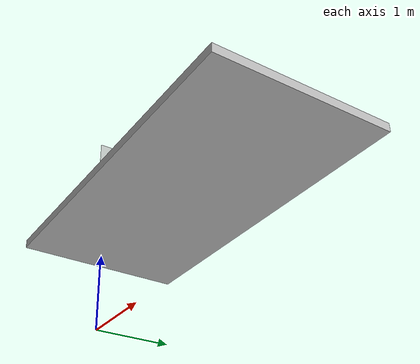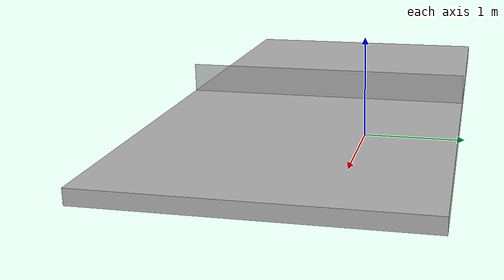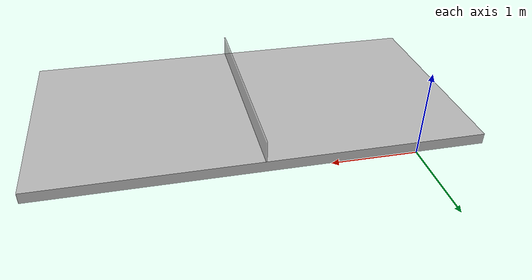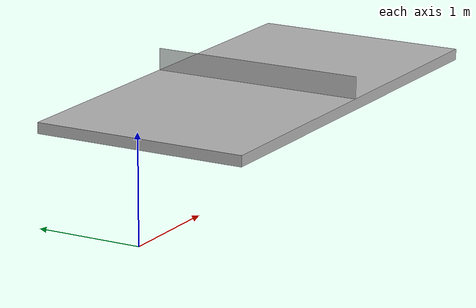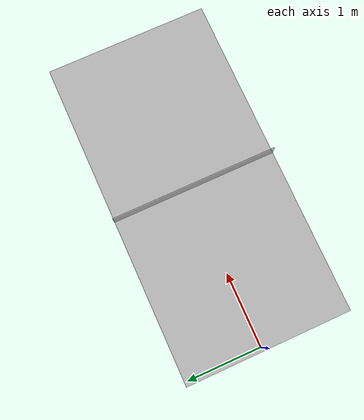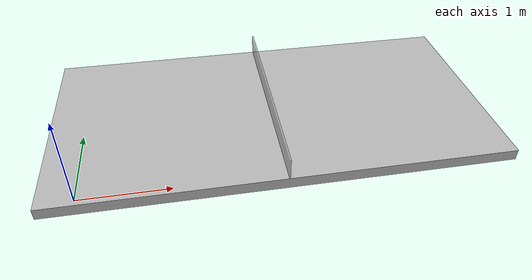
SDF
<?xml version="1.0"?>
<sdf version="1.7">
    <model name="table">
        <pose>0 0 0 0 0 0</pose>
        <link name="table">
            <pose>2 0 0.45 0 0 0</pose>

            <visual name="table_visual">
                <pose>0 0 0.45 0 0 0</pose>
                <geometry>
                <box>
                    <size>4 2 0.1</size>
                </box>
                </geometry>
            </visual>

            <collision name="table_collision">
                <pose>0 0 0.45 0 0 0</pose>
                <geometry>
                <box>
                    <size>4 2 0.1</size>
                </box>
                </geometry>
                <drake:proximity_properties>
                    <drake:point_contact_stiffness>200 </drake:point_contact_stiffness>
                    <drake:hunt_crossley_dissipation>0.01</drake:hunt_crossley_dissipation>
                </drake:proximity_properties>
                <surface>
                    <friction>
                        <ode>
                        <mu>0.01</mu>
                        <mu2>0.01</mu2>
                        </ode>
                    </friction>
                </surface>
            </collision>

            <visual name="net">
                <pose>0 0 0.6 0 0 0</pose>
                <geometry>
                    <box>
                        <size>0.01 2 0.2</size>
                    </box>
                </geometry>
                <material>
                    <diffuse>0.7 0.7 0.7 0.7</diffuse>
                </material>
            </visual>

        </link>
    </model>
</sdf>
